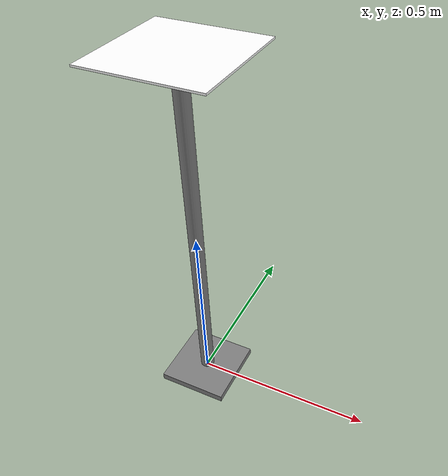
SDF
<?xml version="1.0" ?>
<sdf version="1.9">
  <model name="apriltag_stand">
    <static>false</static>
    <link name="stand">
      <!-- Vertical post -->
      <pose>0 0 0.5 0 0 0</pose>
      <collision name="post_collision">
        <geometry>
          <cylinder>
            <radius>0.02</radius>
            <length>1.0</length>
          </cylinder>
        </geometry>
      </collision>
      <visual name="post_visual">
        <geometry>
          <cylinder>
            <radius>0.02</radius>
            <length>1.0</length>
          </cylinder>
        </geometry>
        <material>
          <ambient>0.3 0.3 0.3 1</ambient>
          <diffuse>0.5 0.5 0.5 1</diffuse>
          <specular>0.1 0.1 0.1 1</specular>
        </material>
      </visual>

      <!-- Base plate -->
      <collision name="base_collision">
        <pose>0 0 -0.5 0 0 0</pose>
        <geometry>
          <box>
            <size>0.2 0.2 0.02</size>
          </box>
        </geometry>
      </collision>
      <visual name="base_visual">
        <pose>0 0 -0.5 0 0 0</pose>
        <geometry>
          <box>
            <size>0.2 0.2 0.02</size>
          </box>
        </geometry>
        <material>
          <ambient>0.3 0.3 0.3 1</ambient>
          <diffuse>0.5 0.5 0.5 1</diffuse>
          <specular>0.1 0.1 0.1 1</specular>
        </material>
      </visual>

      <inertial>
        <mass>1.0</mass>
        <inertia>
          <ixx>0.083</ixx>
          <iyy>0.083</iyy>
          <izz>0.0067</izz>
          <ixy>0</ixy>
          <ixz>0</ixz>
          <iyz>0</iyz>
        </inertia>
      </inertial>
    </link>

    <!-- AprilTag board -->
    <link name="apriltag">
      <pose>0 0 1.0 0 0 0</pose>
      <collision name="tag_collision">
        <geometry>
          <box>
            <size>0.30 0.30 0.005</size>
          </box>
        </geometry>
      </collision>
      <visual name="tag_visual">
        <geometry>
          <box>
            <size>0.30 0.30 0.005</size>
          </box>
        </geometry>
        <!-- White background for AprilTag -->
        <!-- For actual AprilTag textures, use PBR material with texture file -->
        <material>
          <ambient>1 1 1 1</ambient>
          <diffuse>1 1 1 1</diffuse>
          <specular>0.1 0.1 0.1 1</specular>
        </material>
      </visual>

      <inertial>
        <mass>0.1</mass>
        <inertia>
          <ixx>0.00075</ixx>
          <iyy>0.00075</iyy>
          <izz>0.0015</izz>
          <ixy>0</ixy>
          <ixz>0</ixz>
          <iyz>0</iyz>
        </inertia>
      </inertial>
    </link>

    <!-- Joint connecting tag to stand -->
    <joint name="stand_to_tag" type="fixed">
      <parent>stand</parent>
      <child>apriltag</child>
    </joint>
  </model>
</sdf>
